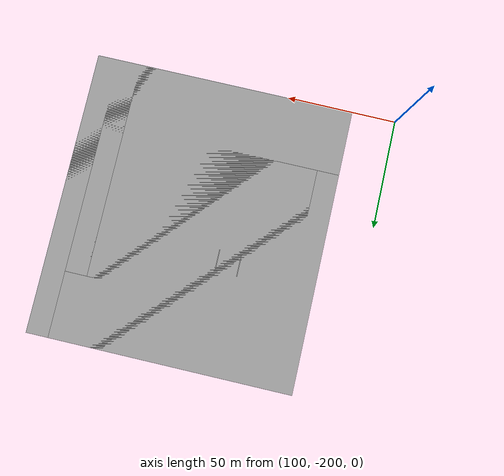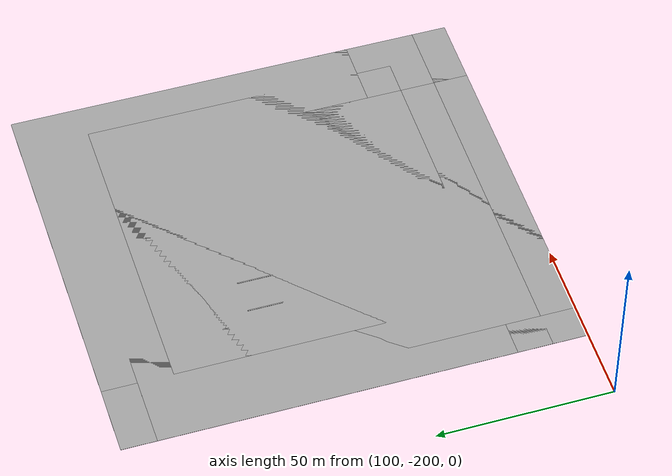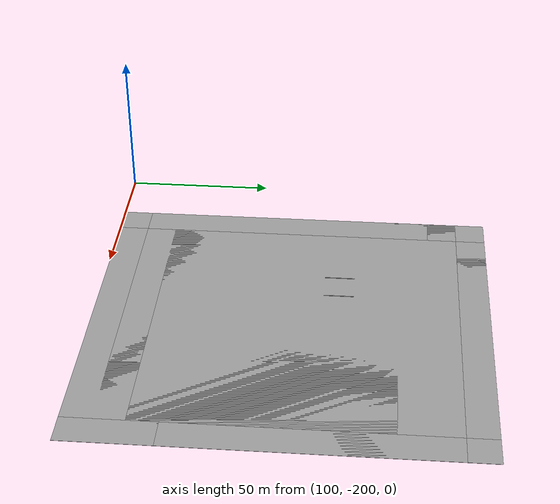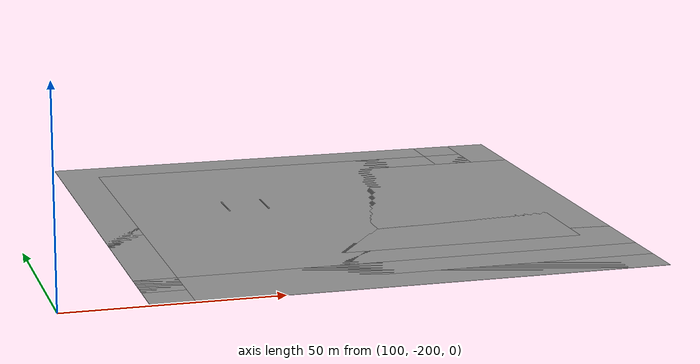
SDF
<sdf version="1.6">
 <world name="road_test">
  <model name="road_straight_12_16">
   <static>1</static>
   <link name="road_straight::link">
    <collision name="collision">
     <geometry><plane><normal>0 0 1</normal><size>10 10</size></plane></geometry>
     <surface><friction><ode><mu>75</mu><mu2>75</mu2></ode></friction></surface>
    </collision>
    <visual name="visual">
     <cast_shadows>0</cast_shadows>
     <geometry><plane><normal>0 0 1</normal><size>10 10</size></plane></geometry>
     <material>
      <script>
       <uri>model://road_straight/materials/scripts</uri>
       <uri>model://road_straight/materials/textures</uri>
       <name>road_straight/Image</name>
      </script>
     </material>
    </visual>
   </link>
   <pose>160 -120 0.02 0 -0 1.57</pose>
  </model>
  <model name="curb_straight_12_16">
   <link name="curb_staight::Wall_5">
    <collision name="Wall_5_Collision">
     <geometry><box><size>10 0.3 0.22</size></box></geometry>
     <pose>0 -5 0 0 -0 0</pose>
    </collision>
    <visual name="Wall_5_Visual">
     <pose>0 -5 0 0 -0 0</pose>
     <geometry><box><size>10 0.3 0.22</size></box></geometry>
     <material>
      <script><uri>file://media/materials/scripts/gazebo.material</uri><name>Gazebo/Grey</name></script>
      <ambient>1 1 1 1</ambient>
     </material>
     <meta><layer>0</layer></meta>
    </visual>
   </link>
   <link name="curb_staight::Wall_7">
    <collision name="Wall_7_Collision">
     <geometry><box><size>10 0.3 0.22</size></box></geometry>
     <pose>0 5 0 0 -0 0</pose>
    </collision>
    <visual name="Wall_7_Visual">
     <pose>0 5 0 0 -0 0</pose>
     <geometry><box><size>10 0.3 0.22</size></box></geometry>
     <material>
      <script><uri>file://media/materials/scripts/gazebo.material</uri><name>Gazebo/Grey</name></script>
      <ambient>1 1 1 1</ambient>
     </material>
     <meta><layer>0</layer></meta>
    </visual>
   </link>
   <static>1</static>
   <pose>160 -120 0.02 0 -0 1.57</pose>
  </model>
  <model name="ground_plane_12_17">
   <static>1</static>
   <link name="ground_plane::link">
    <collision name="collision">
     <geometry><plane><normal>0 0 1</normal><size>100 100</size></plane></geometry>
     <surface><friction><ode><mu>100</mu><mu2>50</mu2></ode></friction></surface>
    </collision>
    <visual name="visual">
     <cast_shadows>0</cast_shadows>
     <geometry><plane><normal>0 0 1</normal><size>100 100</size></plane></geometry>
     <material>
      <script><uri>file://media/materials/scripts/gazebo.material</uri><name>Gazebo/Grey</name></script>
     </material>
    </visual>
   </link>
   <pose>170 -120 0 0 -0 0</pose>
  </model>
  <model name="ground_plane_12_18">
   <static>1</static>
   <link name="ground_plane::link">
    <collision name="collision">
     <geometry><plane><normal>0 0 1</normal><size>100 100</size></plane></geometry>
     <surface><friction><ode><mu>100</mu><mu2>50</mu2></ode></friction></surface>
    </collision>
    <visual name="visual">
     <cast_shadows>0</cast_shadows>
     <geometry><plane><normal>0 0 1</normal><size>100 100</size></plane></geometry>
     <material>
      <script><uri>file://media/materials/scripts/gazebo.material</uri><name>Gazebo/Grey</name></script>
     </material>
    </visual>
   </link>
   <pose>180 -120 0 0 -0 0</pose>
  </model>
  <model name="ground_plane_12_19">
   <static>1</static>
   <link name="ground_plane::link">
    <collision name="collision">
     <geometry><plane><normal>0 0 1</normal><size>100 100</size></plane></geometry>
     <surface><friction><ode><mu>100</mu><mu2>50</mu2></ode></friction></surface>
    </collision>
    <visual name="visual">
     <cast_shadows>0</cast_shadows>
     <geometry><plane><normal>0 0 1</normal><size>100 100</size></plane></geometry>
     <material>
      <script><uri>file://media/materials/scripts/gazebo.material</uri><name>Gazebo/Grey</name></script>
     </material>
    </visual>
   </link>
   <pose>190 -120 0 0 -0 0</pose>
  </model>
  <model name="ground_plane_13_17">
   <static>1</static>
   <link name="ground_plane::link">
    <collision name="collision">
     <geometry><plane><normal>0 0 1</normal><size>100 100</size></plane></geometry>
     <surface><friction><ode><mu>100</mu><mu2>50</mu2></ode></friction></surface>
    </collision>
    <visual name="visual">
     <cast_shadows>0</cast_shadows>
     <geometry><plane><normal>0 0 1</normal><size>100 100</size></plane></geometry>
     <material>
      <script><uri>file://media/materials/scripts/gazebo.material</uri><name>Gazebo/Grey</name></script>
     </material>
    </visual>
   </link>
   <pose>170 -130 0 0 -0 0</pose>
  </model>
  <model name="ground_plane_13_18">
   <static>1</static>
   <link name="ground_plane::link">
    <collision name="collision">
     <geometry><plane><normal>0 0 1</normal><size>100 100</size></plane></geometry>
     <surface><friction><ode><mu>100</mu><mu2>50</mu2></ode></friction></surface>
    </collision>
    <visual name="visual">
     <cast_shadows>0</cast_shadows>
     <geometry><plane><normal>0 0 1</normal><size>100 100</size></plane></geometry>
     <material>
      <script><uri>file://media/materials/scripts/gazebo.material</uri><name>Gazebo/Grey</name></script>
     </material>
    </visual>
   </link>
   <pose>180 -130 0 0 -0 0</pose>
  </model>
  <model name="ground_plane_13_19">
   <static>1</static>
   <link name="ground_plane::link">
    <collision name="collision">
     <geometry><plane><normal>0 0 1</normal><size>100 100</size></plane></geometry>
     <surface><friction><ode><mu>100</mu><mu2>50</mu2></ode></friction></surface>
    </collision>
    <visual name="visual">
     <cast_shadows>0</cast_shadows>
     <geometry><plane><normal>0 0 1</normal><size>100 100</size></plane></geometry>
     <material>
      <script><uri>file://media/materials/scripts/gazebo.material</uri><name>Gazebo/Grey</name></script>
     </material>
    </visual>
   </link>
   <pose>190 -130 0 0 -0 0</pose>
  </model>
  <model name="ground_plane_14_17">
   <static>1</static>
   <link name="ground_plane::link">
    <collision name="collision">
     <geometry><plane><normal>0 0 1</normal><size>100 100</size></plane></geometry>
     <surface><friction><ode><mu>100</mu><mu2>50</mu2></ode></friction></surface>
    </collision>
    <visual name="visual">
     <cast_shadows>0</cast_shadows>
     <geometry><plane><normal>0 0 1</normal><size>100 100</size></plane></geometry>
     <material>
      <script><uri>file://media/materials/scripts/gazebo.material</uri><name>Gazebo/Grey</name></script>
     </material>
    </visual>
   </link>
   <pose>170 -140 0 0 -0 0</pose>
  </model>
  <model name="ground_plane_14_18">
   <static>1</static>
   <link name="ground_plane::link">
    <collision name="collision">
     <geometry><plane><normal>0 0 1</normal><size>100 100</size></plane></geometry>
     <surface><friction><ode><mu>100</mu><mu2>50</mu2></ode></friction></surface>
    </collision>
    <visual name="visual">
     <cast_shadows>0</cast_shadows>
     <geometry><plane><normal>0 0 1</normal><size>100 100</size></plane></geometry>
     <material>
      <script><uri>file://media/materials/scripts/gazebo.material</uri><name>Gazebo/Grey</name></script>
     </material>
    </visual>
   </link>
   <pose>180 -140 0 0 -0 0</pose>
  </model>
  <model name="ground_plane_14_19">
   <static>1</static>
   <link name="ground_plane::link">
    <collision name="collision">
     <geometry><plane><normal>0 0 1</normal><size>100 100</size></plane></geometry>
     <surface><friction><ode><mu>100</mu><mu2>50</mu2></ode></friction></surface>
    </collision>
    <visual name="visual">
     <cast_shadows>0</cast_shadows>
     <geometry><plane><normal>0 0 1</normal><size>100 100</size></plane></geometry>
     <material>
      <script><uri>file://media/materials/scripts/gazebo.material</uri><name>Gazebo/Grey</name></script>
     </material>
    </visual>
   </link>
   <pose>190 -140 0 0 -0 0</pose>
  </model>
  <model name="ground_plane_15_17">
   <static>1</static>
   <link name="ground_plane::link">
    <collision name="collision">
     <geometry><plane><normal>0 0 1</normal><size>100 100</size></plane></geometry>
     <surface><friction><ode><mu>100</mu><mu2>50</mu2></ode></friction></surface>
    </collision>
    <visual name="visual">
     <cast_shadows>0</cast_shadows>
     <geometry><plane><normal>0 0 1</normal><size>100 100</size></plane></geometry>
     <material>
      <script><uri>file://media/materials/scripts/gazebo.material</uri><name>Gazebo/Grey</name></script>
     </material>
    </visual>
   </link>
   <pose>170 -150 0 0 -0 0</pose>
  </model>
  <model name="ground_plane_15_18">
   <static>1</static>
   <link name="ground_plane::link">
    <collision name="collision">
     <geometry><plane><normal>0 0 1</normal><size>100 100</size></plane></geometry>
     <surface><friction><ode><mu>100</mu><mu2>50</mu2></ode></friction></surface>
    </collision>
    <visual name="visual">
     <cast_shadows>0</cast_shadows>
     <geometry><plane><normal>0 0 1</normal><size>100 100</size></plane></geometry>
     <material>
      <script><uri>file://media/materials/scripts/gazebo.material</uri><name>Gazebo/Grey</name></script>
     </material>
    </visual>
   </link>
   <pose>180 -150 0 0 -0 0</pose>
  </model>
  <model name="ground_plane_15_19">
   <static>1</static>
   <link name="ground_plane::link">
    <collision name="collision">
     <geometry><plane><normal>0 0 1</normal><size>100 100</size></plane></geometry>
     <surface><friction><ode><mu>100</mu><mu2>50</mu2></ode></friction></surface>
    </collision>
    <visual name="visual">
     <cast_shadows>0</cast_shadows>
     <geometry><plane><normal>0 0 1</normal><size>100 100</size></plane></geometry>
     <material>
      <script><uri>file://media/materials/scripts/gazebo.material</uri><name>Gazebo/Grey</name></script>
     </material>
    </visual>
   </link>
   <pose>190 -150 0 0 -0 0</pose>
  </model>
  <model name="road_straight_15_20">
   <static>1</static>
   <link name="road_straight::link">
    <collision name="collision">
     <geometry><plane><normal>0 0 1</normal><size>10 10</size></plane></geometry>
     <surface><friction><ode><mu>75</mu><mu2>75</mu2></ode></friction></surface>
    </collision>
    <visual name="visual">
     <cast_shadows>0</cast_shadows>
     <geometry><plane><normal>0 0 1</normal><size>10 10</size></plane></geometry>
     <material>
      <script>
       <uri>model://road_straight/materials/scripts</uri>
       <uri>model://road_straight/materials/textures</uri>
       <name>road_straight/Image</name>
      </script>
     </material>
    </visual>
   </link>
   <pose>200 -150 0.02 0 -0 1.57</pose>
  </model>
  <model name="road_intersection_16_20">
   <static>1</static>
   <link name="road_intersection::link">
    <collision name="collision">
     <geometry><plane><normal>0 0 1</normal><size>10 10</size></plane></geometry>
     <surface><friction><ode><mu>75</mu><mu2>75</mu2></ode></friction></surface>
    </collision>
    <visual name="visual">
     <cast_shadows>0</cast_shadows>
     <geometry><plane><normal>0 0 1</normal><size>10 10</size></plane></geometry>
     <material>
      <script>
       <uri>model://road_intersection/materials/scripts</uri>
       <uri>model://road_intersection/materials/textures</uri>
       <name>road_intersection/Image</name>
      </script>
     </material>
    </visual>
   </link>
   <pose>200 -160 0.02 0 -0 0</pose>
  </model>
 </world>
</sdf>
